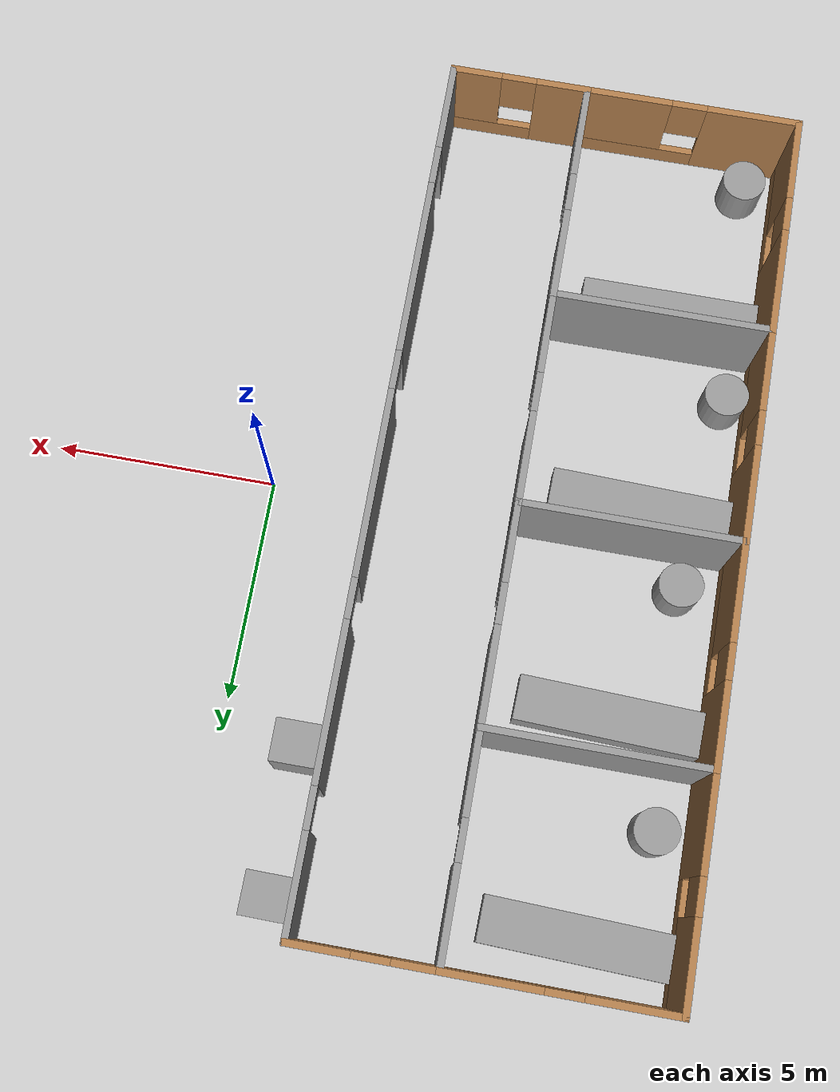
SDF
<sdf version="1.7">
 <world name="default">
  <model name="ground_plane">
   <static>1</static>
   <link name="link">
    <collision name="collision">
     <geometry><plane><normal>0 0 1</normal><size>100 100</size></plane></geometry>
     <surface><friction><ode><mu>100</mu><mu2>50</mu2></ode></friction></surface>
    </collision>
    <visual name="visual">
     <cast_shadows>0</cast_shadows>
     <geometry><plane><normal>0 0 1</normal><size>100 100</size></plane></geometry>
     <material>
      <script><uri>file://media/materials/scripts/gazebo.material</uri><name>Gazebo/Grey</name></script>
     </material>
    </visual>
   </link>
  </model>
  <model name="bed_1">
   <link name="link">
    <inertial>
     <mass>1</mass>
     <inertia>
      <ixx>0.166667</ixx>
      <ixy>0</ixy>
      <ixz>0</ixz>
      <iyy>0.166667</iyy>
      <iyz>0</iyz>
      <izz>0.166667</izz>
     </inertia>
    </inertial>
    <visual name="visual">
     <geometry><box><size>4.06412 1 0.738497</size></box></geometry>
     <material>
      <script><name>Gazebo/Grey</name><uri>file://media/materials/scripts/gazebo.material</uri></script>
      <shader type="pixel"/>
     </material>
    </visual>
    <collision name="collision">
     <geometry><box><size>4.06412 1 0.738497</size></box></geometry>
     <surface>
      <friction>
       <ode><mu>1</mu><mu2>1</mu2><fdir1>0 0 0</fdir1><slip1>0</slip1><slip2>0</slip2></ode>
       <torsional>
        <coefficient>1</coefficient>
        <patch_radius>0</patch_radius>
        <surface_radius>0</surface_radius>
        <use_patch_radius>1</use_patch_radius>
        <ode><slip>0</slip></ode>
       </torsional>
      </friction>
      <bounce><restitution_coefficient>0</restitution_coefficient><threshold>1e+06</threshold></bounce>
      <contact>
       <collide_without_contact>0</collide_without_contact>
       <collide_without_contact_bitmask>1</collide_without_contact_bitmask>
       <collide_bitmask>1</collide_bitmask>
       <ode>
        <soft_cfm>0</soft_cfm>
        <soft_erp>0.2</soft_erp>
        <kp>1e+13</kp>
        <kd>1</kd>
        <max_vel>0.01</max_vel>
        <min_depth>0</min_depth>
       </ode>
       <bullet>
        <split_impulse>1</split_impulse>
        <split_impulse_penetration_threshold>-0.01</split_impulse_penetration_threshold>
        <soft_cfm>0</soft_cfm>
        <soft_erp>0.2</soft_erp>
        <kp>1e+13</kp>
        <kd>1</kd>
       </bullet>
      </contact>
     </surface>
    </collision>
   </link>
   <static>0</static>
   <pose>-8.25739 -5.54308 0.368295 0 0.000469 -4.7e-05</pose>
  </model>
  <model name="bed_2">
   <link name="link">
    <inertial>
     <mass>1</mass>
     <inertia>
      <ixx>0.166667</ixx>
      <ixy>0</ixy>
      <ixz>0</ixz>
      <iyy>0.166667</iyy>
      <iyz>0</iyz>
      <izz>0.166667</izz>
     </inertia>
    </inertial>
    <visual name="visual">
     <geometry><box><size>4.06412 1 0.738497</size></box></geometry>
     <material>
      <script><name>Gazebo/Grey</name><uri>file://media/materials/scripts/gazebo.material</uri></script>
      <shader type="pixel"/>
     </material>
    </visual>
    <collision name="collision">
     <geometry><box><size>4.06412 1 0.738497</size></box></geometry>
     <surface>
      <friction>
       <ode><mu>1</mu><mu2>1</mu2><fdir1>0 0 0</fdir1><slip1>0</slip1><slip2>0</slip2></ode>
       <torsional>
        <coefficient>1</coefficient>
        <patch_radius>0</patch_radius>
        <surface_radius>0</surface_radius>
        <use_patch_radius>1</use_patch_radius>
        <ode><slip>0</slip></ode>
       </torsional>
      </friction>
      <bounce><restitution_coefficient>0</restitution_coefficient><threshold>1e+06</threshold></bounce>
      <contact>
       <collide_without_contact>0</collide_without_contact>
       <collide_without_contact_bitmask>1</collide_without_contact_bitmask>
       <collide_bitmask>1</collide_bitmask>
       <ode>
        <soft_cfm>0</soft_cfm>
        <soft_erp>0.2</soft_erp>
        <kp>1e+13</kp>
        <kd>1</kd>
        <max_vel>0.01</max_vel>
        <min_depth>0</min_depth>
       </ode>
       <bullet>
        <split_impulse>1</split_impulse>
        <split_impulse_penetration_threshold>-0.01</split_impulse_penetration_threshold>
        <soft_cfm>0</soft_cfm>
        <soft_erp>0.2</soft_erp>
        <kp>1e+13</kp>
        <kd>1</kd>
       </bullet>
      </contact>
     </surface>
    </collision>
   </link>
   <static>0</static>
   <pose>-8.25417 -0.775659 0.369245 7e-06 -0 -0.025887</pose>
  </model>
  <model name="stool_2">
   <link name="link">
    <inertial>
     <mass>1</mass>
     <inertia><ixx>0.145833</ixx><ixy>0</ixy><ixz>0</ixz><iyy>0.145833</iyy><iyz>0</iyz><izz>0.125</izz></inertia>
    </inertial>
    <visual name="visual">
     <geometry><cylinder><radius>0.5</radius><length>1</length></cylinder></geometry>
     <material>
      <script><name>Gazebo/Grey</name><uri>file://media/materials/scripts/gazebo.material</uri></script>
      <shader type="pixel"/>
     </material>
    </visual>
    <collision name="collision">
     <geometry><cylinder><radius>0.5</radius><length>1</length></cylinder></geometry>
     <surface>
      <friction>
       <ode><mu>1</mu><mu2>1</mu2><fdir1>0 0 0</fdir1><slip1>0</slip1><slip2>0</slip2></ode>
       <torsional>
        <coefficient>1</coefficient>
        <patch_radius>0</patch_radius>
        <surface_radius>0</surface_radius>
        <use_patch_radius>1</use_patch_radius>
        <ode><slip>0</slip></ode>
       </torsional>
      </friction>
      <bounce><restitution_coefficient>0</restitution_coefficient><threshold>1e+06</threshold></bounce>
      <contact>
       <collide_without_contact>0</collide_without_contact>
       <collide_without_contact_bitmask>1</collide_without_contact_bitmask>
       <collide_bitmask>1</collide_bitmask>
       <ode>
        <soft_cfm>0</soft_cfm>
        <soft_erp>0.2</soft_erp>
        <kp>1e+13</kp>
        <kd>1</kd>
        <max_vel>0.01</max_vel>
        <min_depth>0</min_depth>
       </ode>
       <bullet>
        <split_impulse>1</split_impulse>
        <split_impulse_penetration_threshold>-0.01</split_impulse_penetration_threshold>
        <soft_cfm>0</soft_cfm>
        <soft_erp>0.2</soft_erp>
        <kp>1e+13</kp>
        <kd>1</kd>
       </bullet>
      </contact>
     </surface>
    </collision>
   </link>
   <static>0</static>
   <pose>-9.8 -3.63625 0.499998 2e-06 1e-06 -3e-06</pose>
  </model>
  <model name="bed_3">
   <link name="link">
    <inertial>
     <mass>1</mass>
     <inertia>
      <ixx>0.166667</ixx>
      <ixy>0</ixy>
      <ixz>0</ixz>
      <iyy>0.166667</iyy>
      <iyz>0</iyz>
      <izz>0.166667</izz>
     </inertia>
    </inertial>
    <visual name="visual">
     <geometry><box><size>4.06412 1 0.738497</size></box></geometry>
     <material>
      <script><name>Gazebo/Grey</name><uri>file://media/materials/scripts/gazebo.material</uri></script>
      <shader type="pixel"/>
     </material>
    </visual>
    <collision name="collision">
     <geometry><box><size>4.06412 1 0.738497</size></box></geometry>
     <surface>
      <friction>
       <ode><mu>1</mu><mu2>1</mu2><fdir1>0 0 0</fdir1><slip1>0</slip1><slip2>0</slip2></ode>
       <torsional>
        <coefficient>1</coefficient>
        <patch_radius>0</patch_radius>
        <surface_radius>0</surface_radius>
        <use_patch_radius>1</use_patch_radius>
        <ode><slip>0</slip></ode>
       </torsional>
      </friction>
      <bounce><restitution_coefficient>0</restitution_coefficient><threshold>1e+06</threshold></bounce>
      <contact>
       <collide_without_contact>0</collide_without_contact>
       <collide_without_contact_bitmask>1</collide_without_contact_bitmask>
       <collide_bitmask>1</collide_bitmask>
       <ode>
        <soft_cfm>0</soft_cfm>
        <soft_erp>0.2</soft_erp>
        <kp>1e+13</kp>
        <kd>1</kd>
        <max_vel>0.01</max_vel>
        <min_depth>0</min_depth>
       </ode>
       <bullet>
        <split_impulse>1</split_impulse>
        <split_impulse_penetration_threshold>-0.01</split_impulse_penetration_threshold>
        <soft_cfm>0</soft_cfm>
        <soft_erp>0.2</soft_erp>
        <kp>1e+13</kp>
        <kd>1</kd>
       </bullet>
      </contact>
     </surface>
    </collision>
   </link>
   <static>0</static>
   <pose>-8.25125 4.00061 0.369249 -1e-06 -0 -0.033432</pose>
  </model>
  <model name="bed_4">
   <link name="link">
    <inertial>
     <mass>1</mass>
     <inertia>
      <ixx>0.166667</ixx>
      <ixy>0</ixy>
      <ixz>0</ixz>
      <iyy>0.166667</iyy>
      <iyz>0</iyz>
      <izz>0.166667</izz>
     </inertia>
    </inertial>
    <visual name="visual">
     <geometry><box><size>4.06412 1 0.738497</size></box></geometry>
     <material>
      <script><name>Gazebo/Grey</name><uri>file://media/materials/scripts/gazebo.material</uri></script>
      <shader type="pixel"/>
     </material>
    </visual>
    <collision name="collision">
     <geometry><box><size>4.06412 1 0.738497</size></box></geometry>
     <surface>
      <friction>
       <ode><mu>1</mu><mu2>1</mu2><fdir1>0 0 0</fdir1><slip1>0</slip1><slip2>0</slip2></ode>
       <torsional>
        <coefficient>1</coefficient>
        <patch_radius>0</patch_radius>
        <surface_radius>0</surface_radius>
        <use_patch_radius>1</use_patch_radius>
        <ode><slip>0</slip></ode>
       </torsional>
      </friction>
      <bounce><restitution_coefficient>0</restitution_coefficient><threshold>1e+06</threshold></bounce>
      <contact>
       <collide_without_contact>0</collide_without_contact>
       <collide_without_contact_bitmask>1</collide_without_contact_bitmask>
       <collide_bitmask>1</collide_bitmask>
       <ode>
        <soft_cfm>0</soft_cfm>
        <soft_erp>0.2</soft_erp>
        <kp>1e+13</kp>
        <kd>1</kd>
        <max_vel>0.01</max_vel>
        <min_depth>0</min_depth>
       </ode>
       <bullet>
        <split_impulse>1</split_impulse>
        <split_impulse_penetration_threshold>-0.01</split_impulse_penetration_threshold>
        <soft_cfm>0</soft_cfm>
        <soft_erp>0.2</soft_erp>
        <kp>1e+13</kp>
        <kd>1</kd>
       </bullet>
      </contact>
     </surface>
    </collision>
   </link>
   <static>0</static>
   <pose>-8.24267 8.70874 0.369243 -5e-06 2e-06 -0.030146</pose>
  </model>
  <model name="stool_4">
   <link name="link">
    <inertial>
     <mass>1</mass>
     <inertia><ixx>0.145833</ixx><ixy>0</ixy><ixz>0</ixz><iyy>0.145833</iyy><iyz>0</iyz><izz>0.125</izz></inertia>
    </inertial>
    <visual name="visual">
     <geometry><cylinder><radius>0.5</radius><length>1</length></cylinder></geometry>
     <material>
      <script><name>Gazebo/Grey</name><uri>file://media/materials/scripts/gazebo.material</uri></script>
      <shader type="pixel"/>
     </material>
    </visual>
    <collision name="collision">
     <geometry><cylinder><radius>0.5</radius><length>1</length></cylinder></geometry>
     <surface>
      <friction>
       <ode><mu>1</mu><mu2>1</mu2><fdir1>0 0 0</fdir1><slip1>0</slip1><slip2>0</slip2></ode>
       <torsional>
        <coefficient>1</coefficient>
        <patch_radius>0</patch_radius>
        <surface_radius>0</surface_radius>
        <use_patch_radius>1</use_patch_radius>
        <ode><slip>0</slip></ode>
       </torsional>
      </friction>
      <bounce><restitution_coefficient>0</restitution_coefficient><threshold>1e+06</threshold></bounce>
      <contact>
       <collide_without_contact>0</collide_without_contact>
       <collide_without_contact_bitmask>1</collide_without_contact_bitmask>
       <collide_bitmask>1</collide_bitmask>
       <ode>
        <soft_cfm>0</soft_cfm>
        <soft_erp>0.2</soft_erp>
        <kp>1e+13</kp>
        <kd>1</kd>
        <max_vel>0.01</max_vel>
        <min_depth>0</min_depth>
       </ode>
       <bullet>
        <split_impulse>1</split_impulse>
        <split_impulse_penetration_threshold>-0.01</split_impulse_penetration_threshold>
        <soft_cfm>0</soft_cfm>
        <soft_erp>0.2</soft_erp>
        <kp>1e+13</kp>
        <kd>1</kd>
       </bullet>
      </contact>
     </surface>
    </collision>
   </link>
   <static>0</static>
   <pose>-9.56304 6.25965 0.499998 2e-06 -0 0</pose>
  </model>
  <model name="hospital_floor_v2">
   <link name="Wall_24">
    <pose>-10.375 2.5506 0 0 -0 -1.5708</pose>
    <visual name="Wall_24_Visual_0">
     <pose>-1.53431 0 1.25 0 -0 0</pose>
     <geometry><box><size>1.93138 0.15 2.5</size></box></geometry>
     <material>
      <script><uri>file://media/materials/scripts/gazebo.material</uri><name>Gazebo/Wood</name></script>
      <ambient>1 1 1 1</ambient>
     </material>
     <meta><layer>0</layer></meta>
    </visual>
    <collision name="Wall_24_Collision_0">
     <geometry><box><size>1.93138 0.15 2.5</size></box></geometry>
     <pose>-1.53431 0 1.25 0 -0 0</pose>
    </collision>
    <visual name="Wall_24_Visual_1">
     <pose>0.965692 0 0.25 0 -0 0</pose>
     <geometry><box><size>3.06862 0.15 0.5</size></box></geometry>
     <material>
      <script><uri>file://media/materials/scripts/gazebo.material</uri><name>Gazebo/Wood</name></script>
      <ambient>1 1 1 1</ambient>
     </material>
     <meta><layer>0</layer></meta>
    </visual>
    <collision name="Wall_24_Collision_1">
     <geometry><box><size>3.06862 0.15 0.5</size></box></geometry>
     <pose>0.965692 0 0.25 0 -0 0</pose>
    </collision>
    <visual name="Wall_24_Visual_2">
     <pose>1.36569 0 1.5 0 -0 0</pose>
     <geometry><box><size>2.26862 0.15 2</size></box></geometry>
     <material>
      <script><uri>file://media/materials/scripts/gazebo.material</uri><name>Gazebo/Wood</name></script>
      <ambient>1 1 1 1</ambient>
     </material>
     <meta><layer>0</layer></meta>
    </visual>
    <collision name="Wall_24_Collision_2">
     <geometry><box><size>2.26862 0.15 2</size></box></geometry>
     <pose>1.36569 0 1.5 0 -0 0</pose>
    </collision>
    <visual name="Wall_24_Visual_3">
     <pose>-0.168617 0 1.9 0 -0 0</pose>
     <geometry><box><size>0.8 0.15 1.2</size></box></geometry>
     <material>
      <script><uri>file://media/materials/scripts/gazebo.material</uri><name>Gazebo/Wood</name></script>
      <ambient>1 1 1 1</ambient>
     </material>
     <meta><layer>0</layer></meta>
    </visual>
    <collision name="Wall_24_Collision_3">
     <geometry><box><size>0.8 0.15 1.2</size></box></geometry>
     <pose>-0.168617 0 1.9 0 -0 0</pose>
    </collision>
   </link>
   <link name="Wall_28">
    <collision name="Wall_28_Collision">
     <geometry><box><size>5 0.15 2.5</size></box></geometry>
     <pose>0 0 1.25 0 -0 0</pose>
    </collision>
    <visual name="Wall_28_Visual">
     <pose>0 0 1.25 0 -0 0</pose>
     <geometry><box><size>5 0.15 2.5</size></box></geometry>
     <material>
      <script><uri>file://media/materials/scripts/gazebo.material</uri><name>Gazebo/Grey</name></script>
      <ambient>1 1 1 1</ambient>
     </material>
     <meta><layer>0</layer></meta>
    </visual>
    <pose>-7.95 4.9756 0 0 -0 0</pose>
   </link>
   <link name="Wall_29">
    <pose>-5.525 2.5506 0 0 -0 -1.5708</pose>
    <visual name="Wall_29_Visual_0">
     <pose>-1.3768 0 1.25 0 -0 0</pose>
     <geometry><box><size>2.24639 0.15 2.5</size></box></geometry>
     <material>
      <script><uri>file://media/materials/scripts/gazebo.material</uri><name>Gazebo/Grey</name></script>
      <ambient>1 1 1 1</ambient>
     </material>
     <meta><layer>0</layer></meta>
    </visual>
    <collision name="Wall_29_Collision_0">
     <geometry><box><size>2.24639 0.15 2.5</size></box></geometry>
     <pose>-1.3768 0 1.25 0 -0 0</pose>
    </collision>
    <visual name="Wall_29_Visual_1">
     <pose>1.5732 0 1.25 0 -0 0</pose>
     <geometry><box><size>1.85361 0.15 2.5</size></box></geometry>
     <material>
      <script><uri>file://media/materials/scripts/gazebo.material</uri><name>Gazebo/Grey</name></script>
      <ambient>1 1 1 1</ambient>
     </material>
     <meta><layer>0</layer></meta>
    </visual>
    <collision name="Wall_29_Collision_1">
     <geometry><box><size>1.85361 0.15 2.5</size></box></geometry>
     <pose>1.5732 0 1.25 0 -0 0</pose>
    </collision>
    <visual name="Wall_29_Visual_2">
     <pose>0.196393 0 2.25 0 -0 0</pose>
     <geometry><box><size>0.9 0.15 0.5</size></box></geometry>
     <material>
      <script><uri>file://media/materials/scripts/gazebo.material</uri><name>Gazebo/Grey</name></script>
      <ambient>1 1 1 1</ambient>
     </material>
     <meta><layer>0</layer></meta>
    </visual>
    <collision name="Wall_29_Collision_2">
     <geometry><box><size>0.9 0.15 0.5</size></box></geometry>
     <pose>0.196393 0 2.25 0 -0 0</pose>
    </collision>
   </link>
   <link name="Wall_30">
    <collision name="Wall_30_Collision">
     <geometry><box><size>5 0.15 2.5</size></box></geometry>
     <pose>0 0 1.25 0 -0 0</pose>
    </collision>
    <visual name="Wall_30_Visual">
     <pose>0 0 1.25 0 -0 0</pose>
     <geometry><box><size>5 0.15 2.5</size></box></geometry>
     <material>
      <script><uri>file://media/materials/scripts/gazebo.material</uri><name>Gazebo/Grey</name></script>
      <ambient>1 1 1 1</ambient>
     </material>
     <meta><layer>0</layer></meta>
    </visual>
    <pose>-7.95 0.125599 0 0 -0 3.14159</pose>
   </link>
   <link name="Wall_31">
    <pose>-10.375 -2.2994 0 0 -0 -1.5708</pose>
    <visual name="Wall_31_Visual_0">
     <pose>-1.38396 0 1.25 0 -0 0</pose>
     <geometry><box><size>2.23208 0.15 2.5</size></box></geometry>
     <material>
      <script><uri>file://media/materials/scripts/gazebo.material</uri><name>Gazebo/Wood</name></script>
      <ambient>1 1 1 1</ambient>
     </material>
     <meta><layer>0</layer></meta>
    </visual>
    <collision name="Wall_31_Collision_0">
     <geometry><box><size>2.23208 0.15 2.5</size></box></geometry>
     <pose>-1.38396 0 1.25 0 -0 0</pose>
    </collision>
    <visual name="Wall_31_Visual_1">
     <pose>1.11604 0 0.25 0 -0 0</pose>
     <geometry><box><size>2.76792 0.15 0.5</size></box></geometry>
     <material>
      <script><uri>file://media/materials/scripts/gazebo.material</uri><name>Gazebo/Wood</name></script>
      <ambient>1 1 1 1</ambient>
     </material>
     <meta><layer>0</layer></meta>
    </visual>
    <collision name="Wall_31_Collision_1">
     <geometry><box><size>2.76792 0.15 0.5</size></box></geometry>
     <pose>1.11604 0 0.25 0 -0 0</pose>
    </collision>
    <visual name="Wall_31_Visual_2">
     <pose>1.51604 0 1.5 0 -0 0</pose>
     <geometry><box><size>1.96792 0.15 2</size></box></geometry>
     <material>
      <script><uri>file://media/materials/scripts/gazebo.material</uri><name>Gazebo/Wood</name></script>
      <ambient>1 1 1 1</ambient>
     </material>
     <meta><layer>0</layer></meta>
    </visual>
    <collision name="Wall_31_Collision_2">
     <geometry><box><size>1.96792 0.15 2</size></box></geometry>
     <pose>1.51604 0 1.5 0 -0 0</pose>
    </collision>
    <visual name="Wall_31_Visual_3">
     <pose>0.13208 0 1.9 0 -0 0</pose>
     <geometry><box><size>0.8 0.15 1.2</size></box></geometry>
     <material>
      <script><uri>file://media/materials/scripts/gazebo.material</uri><name>Gazebo/Wood</name></script>
      <ambient>1 1 1 1</ambient>
     </material>
     <meta><layer>0</layer></meta>
    </visual>
    <collision name="Wall_31_Collision_3">
     <geometry><box><size>0.8 0.15 1.2</size></box></geometry>
     <pose>0.13208 0 1.9 0 -0 0</pose>
    </collision>
   </link>
   <link name="Wall_32">
    <collision name="Wall_32_Collision">
     <geometry><box><size>5 0.15 2.5</size></box></geometry>
     <pose>0 0 1.25 0 -0 0</pose>
    </collision>
    <visual name="Wall_32_Visual">
     <pose>0 0 1.25 0 -0 0</pose>
     <geometry><box><size>5 0.15 2.5</size></box></geometry>
     <material>
      <script><uri>file://media/materials/scripts/gazebo.material</uri><name>Gazebo/Grey</name></script>
      <ambient>1 1 1 1</ambient>
     </material>
     <meta><layer>0</layer></meta>
    </visual>
    <pose>-7.95 -4.7244 0 0 -0 0</pose>
   </link>
   <link name="Wall_33">
    <pose>-5.525 -2.2994 0 0 -0 1.5708</pose>
    <visual name="Wall_33_Visual_0">
     <pose>-1.52076 0 1.25 0 -0 0</pose>
     <geometry><box><size>1.95848 0.15 2.5</size></box></geometry>
     <material>
      <script><uri>file://media/materials/scripts/gazebo.material</uri><name>Gazebo/Grey</name></script>
      <ambient>1 1 1 1</ambient>
     </material>
     <meta><layer>0</layer></meta>
    </visual>
    <collision name="Wall_33_Collision_0">
     <geometry><box><size>1.95848 0.15 2.5</size></box></geometry>
     <pose>-1.52076 0 1.25 0 -0 0</pose>
    </collision>
    <visual name="Wall_33_Visual_1">
     <pose>1.42924 0 1.25 0 -0 0</pose>
     <geometry><box><size>2.14152 0.15 2.5</size></box></geometry>
     <material>
      <script><uri>file://media/materials/scripts/gazebo.material</uri><name>Gazebo/Grey</name></script>
      <ambient>1 1 1 1</ambient>
     </material>
     <meta><layer>0</layer></meta>
    </visual>
    <collision name="Wall_33_Collision_1">
     <geometry><box><size>2.14152 0.15 2.5</size></box></geometry>
     <pose>1.42924 0 1.25 0 -0 0</pose>
    </collision>
    <visual name="Wall_33_Visual_2">
     <pose>-0.091523 0 2.25 0 -0 0</pose>
     <geometry><box><size>0.9 0.15 0.5</size></box></geometry>
     <material>
      <script><uri>file://media/materials/scripts/gazebo.material</uri><name>Gazebo/Grey</name></script>
      <ambient>1 1 1 1</ambient>
     </material>
     <meta><layer>0</layer></meta>
    </visual>
    <collision name="Wall_33_Collision_2">
     <geometry><box><size>0.9 0.15 0.5</size></box></geometry>
     <pose>-0.091523 0 2.25 0 -0 0</pose>
    </collision>
   </link>
   <link name="Wall_35">
    <pose>-10.375 -7.2744 0 0 -0 -1.5708</pose>
    <visual name="Wall_35_Visual_0">
     <pose>-1.37889 0 1.25 0 -0 0</pose>
     <geometry><box><size>2.49222 0.15 2.5</size></box></geometry>
     <material>
      <script><uri>file://media/materials/scripts/gazebo.material</uri><name>Gazebo/Wood</name></script>
      <ambient>1 1 1 1</ambient>
     </material>
     <meta><layer>0</layer></meta>
    </visual>
    <collision name="Wall_35_Collision_0">
     <geometry><box><size>2.49222 0.15 2.5</size></box></geometry>
     <pose>-1.37889 0 1.25 0 -0 0</pose>
    </collision>
    <visual name="Wall_35_Visual_1">
     <pose>1.24611 0 0.25 0 -0 0</pose>
     <geometry><box><size>2.75778 0.15 0.5</size></box></geometry>
     <material>
      <script><uri>file://media/materials/scripts/gazebo.material</uri><name>Gazebo/Wood</name></script>
      <ambient>1 1 1 1</ambient>
     </material>
     <meta><layer>0</layer></meta>
    </visual>
    <collision name="Wall_35_Collision_1">
     <geometry><box><size>2.75778 0.15 0.5</size></box></geometry>
     <pose>1.24611 0 0.25 0 -0 0</pose>
    </collision>
    <visual name="Wall_35_Visual_2">
     <pose>1.64611 0 1.5 0 -0 0</pose>
     <geometry><box><size>1.95778 0.15 2</size></box></geometry>
     <material>
      <script><uri>file://media/materials/scripts/gazebo.material</uri><name>Gazebo/Wood</name></script>
      <ambient>1 1 1 1</ambient>
     </material>
     <meta><layer>0</layer></meta>
    </visual>
    <collision name="Wall_35_Collision_2">
     <geometry><box><size>1.95778 0.15 2</size></box></geometry>
     <pose>1.64611 0 1.5 0 -0 0</pose>
    </collision>
    <visual name="Wall_35_Visual_3">
     <pose>0.26722 0 1.9 0 -0 0</pose>
     <geometry><box><size>0.8 0.15 1.2</size></box></geometry>
     <material>
      <script><uri>file://media/materials/scripts/gazebo.material</uri><name>Gazebo/Wood</name></script>
      <ambient>1 1 1 1</ambient>
     </material>
     <meta><layer>0</layer></meta>
    </visual>
    <collision name="Wall_35_Collision_3">
     <geometry><box><size>0.8 0.15 1.2</size></box></geometry>
     <pose>0.26722 0 1.9 0 -0 0</pose>
    </collision>
   </link>
   <link name="Wall_36">
    <pose>-7.95 -9.8244 0 0 -0 0</pose>
    <visual name="Wall_36_Visual_0">
     <pose>-1.41383 0 1.25 0 -0 0</pose>
     <geometry><box><size>2.17234 0.15 2.5</size></box></geometry>
     <material>
      <script><uri>file://media/materials/scripts/gazebo.material</uri><name>Gazebo/Wood</name></script>
      <ambient>1 1 1 1</ambient>
     </material>
     <meta><layer>0</layer></meta>
    </visual>
    <collision name="Wall_36_Collision_0">
     <geometry><box><size>2.17234 0.15 2.5</size></box></geometry>
     <pose>-1.41383 0 1.25 0 -0 0</pose>
    </collision>
    <visual name="Wall_36_Visual_1">
     <pose>1.08617 0 0.25 0 -0 0</pose>
     <geometry><box><size>2.82766 0.15 0.5</size></box></geometry>
     <material>
      <script><uri>file://media/materials/scripts/gazebo.material</uri><name>Gazebo/Wood</name></script>
      <ambient>1 1 1 1</ambient>
     </material>
     <meta><layer>0</layer></meta>
    </visual>
    <collision name="Wall_36_Collision_1">
     <geometry><box><size>2.82766 0.15 0.5</size></box></geometry>
     <pose>1.08617 0 0.25 0 -0 0</pose>
    </collision>
    <visual name="Wall_36_Visual_2">
     <pose>1.48617 0 1.5 0 -0 0</pose>
     <geometry><box><size>2.02766 0.15 2</size></box></geometry>
     <material>
      <script><uri>file://media/materials/scripts/gazebo.material</uri><name>Gazebo/Wood</name></script>
      <ambient>1 1 1 1</ambient>
     </material>
     <meta><layer>0</layer></meta>
    </visual>
    <collision name="Wall_36_Collision_2">
     <geometry><box><size>2.02766 0.15 2</size></box></geometry>
     <pose>1.48617 0 1.5 0 -0 0</pose>
    </collision>
    <visual name="Wall_36_Visual_3">
     <pose>0.072339 0 1.9 0 -0 0</pose>
     <geometry><box><size>0.8 0.15 1.2</size></box></geometry>
     <material>
      <script><uri>file://media/materials/scripts/gazebo.material</uri><name>Gazebo/Wood</name></script>
      <ambient>1 1 1 1</ambient>
     </material>
     <meta><layer>0</layer></meta>
    </visual>
    <collision name="Wall_36_Collision_3">
     <geometry><box><size>0.8 0.15 1.2</size></box></geometry>
     <pose>0.072339 0 1.9 0 -0 0</pose>
    </collision>
   </link>
   <link name="Wall_37">
    <pose>-5.525 -7.2744 0 0 -0 1.5708</pose>
    <visual name="Wall_37_Visual_0">
     <pose>-1.50888 0 1.25 0 -0 0</pose>
     <geometry><box><size>2.23223 0.15 2.5</size></box></geometry>
     <material>
      <script><uri>file://media/materials/scripts/gazebo.material</uri><name>Gazebo/Grey</name></script>
      <ambient>1 1 1 1</ambient>
     </material>
     <meta><layer>0</layer></meta>
    </visual>
    <collision name="Wall_37_Collision_0">
     <geometry><box><size>2.23223 0.15 2.5</size></box></geometry>
     <pose>-1.50888 0 1.25 0 -0 0</pose>
    </collision>
    <visual name="Wall_37_Visual_1">
     <pose>1.56612 0 1.25 0 -0 0</pose>
     <geometry><box><size>2.11777 0.15 2.5</size></box></geometry>
     <material>
      <script><uri>file://media/materials/scripts/gazebo.material</uri><name>Gazebo/Grey</name></script>
      <ambient>1 1 1 1</ambient>
     </material>
     <meta><layer>0</layer></meta>
    </visual>
    <collision name="Wall_37_Collision_1">
     <geometry><box><size>2.11777 0.15 2.5</size></box></geometry>
     <pose>1.56612 0 1.25 0 -0 0</pose>
    </collision>
    <visual name="Wall_37_Visual_2">
     <pose>0.057233 0 2.25 0 -0 0</pose>
     <geometry><box><size>0.9 0.15 0.5</size></box></geometry>
     <material>
      <script><uri>file://media/materials/scripts/gazebo.material</uri><name>Gazebo/Grey</name></script>
      <ambient>1 1 1 1</ambient>
     </material>
     <meta><layer>0</layer></meta>
    </visual>
    <collision name="Wall_37_Collision_2">
     <geometry><box><size>0.9 0.15 0.5</size></box></geometry>
     <pose>0.057233 0 2.25 0 -0 0</pose>
    </collision>
   </link>
   <link name="Wall_39">
    <pose>-10.375 7.4006 0 0 -0 1.5708</pose>
    <visual name="Wall_39_Visual_0">
     <pose>-1.39785 0 1.25 0 -0 0</pose>
     <geometry><box><size>2.2043 0.15 2.5</size></box></geometry>
     <material>
      <script><uri>file://media/materials/scripts/gazebo.material</uri><name>Gazebo/Wood</name></script>
      <ambient>1 1 1 1</ambient>
     </material>
     <meta><layer>0</layer></meta>
    </visual>
    <collision name="Wall_39_Collision_0">
     <geometry><box><size>2.2043 0.15 2.5</size></box></geometry>
     <pose>-1.39785 0 1.25 0 -0 0</pose>
    </collision>
    <visual name="Wall_39_Visual_1">
     <pose>1.10215 0 0.25 0 -0 0</pose>
     <geometry><box><size>2.7957 0.15 0.5</size></box></geometry>
     <material>
      <script><uri>file://media/materials/scripts/gazebo.material</uri><name>Gazebo/Wood</name></script>
      <ambient>1 1 1 1</ambient>
     </material>
     <meta><layer>0</layer></meta>
    </visual>
    <collision name="Wall_39_Collision_1">
     <geometry><box><size>2.7957 0.15 0.5</size></box></geometry>
     <pose>1.10215 0 0.25 0 -0 0</pose>
    </collision>
    <visual name="Wall_39_Visual_2">
     <pose>1.50215 0 1.5 0 -0 0</pose>
     <geometry><box><size>1.9957 0.15 2</size></box></geometry>
     <material>
      <script><uri>file://media/materials/scripts/gazebo.material</uri><name>Gazebo/Wood</name></script>
      <ambient>1 1 1 1</ambient>
     </material>
     <meta><layer>0</layer></meta>
    </visual>
    <collision name="Wall_39_Collision_2">
     <geometry><box><size>1.9957 0.15 2</size></box></geometry>
     <pose>1.50215 0 1.5 0 -0 0</pose>
    </collision>
    <visual name="Wall_39_Visual_3">
     <pose>0.104303 0 1.9 0 -0 0</pose>
     <geometry><box><size>0.8 0.15 1.2</size></box></geometry>
     <material>
      <script><uri>file://media/materials/scripts/gazebo.material</uri><name>Gazebo/Wood</name></script>
      <ambient>1 1 1 1</ambient>
     </material>
     <meta><layer>0</layer></meta>
    </visual>
    <collision name="Wall_39_Collision_3">
     <geometry><box><size>0.8 0.15 1.2</size></box></geometry>
     <pose>0.104303 0 1.9 0 -0 0</pose>
    </collision>
   </link>
   <link name="Wall_40">
    <pose>-7.95 9.8256 0 0 -0 0</pose>
    <visual name="Wall_40_Visual_0">
     <pose>-1.47467 0 1.25 0 -0 0</pose>
     <geometry><box><size>2.05067 0.15 2.5</size></box></geometry>
     <material>
      <script><uri>file://media/materials/scripts/gazebo.material</uri><name>Gazebo/Wood</name></script>
      <ambient>1 1 1 1</ambient>
     </material>
     <meta><layer>0</layer></meta>
    </visual>
    <collision name="Wall_40_Collision_0">
     <geometry><box><size>2.05067 0.15 2.5</size></box></geometry>
     <pose>-1.47467 0 1.25 0 -0 0</pose>
    </collision>
    <visual name="Wall_40_Visual_1">
     <pose>1.02533 0 0.25 0 -0 0</pose>
     <geometry><box><size>2.94933 0.15 0.5</size></box></geometry>
     <material>
      <script><uri>file://media/materials/scripts/gazebo.material</uri><name>Gazebo/Wood</name></script>
      <ambient>1 1 1 1</ambient>
     </material>
     <meta><layer>0</layer></meta>
    </visual>
    <collision name="Wall_40_Collision_1">
     <geometry><box><size>2.94933 0.15 0.5</size></box></geometry>
     <pose>1.02533 0 0.25 0 -0 0</pose>
    </collision>
    <visual name="Wall_40_Visual_2">
     <pose>1.42533 0 1.5 0 -0 0</pose>
     <geometry><box><size>2.14933 0.15 2</size></box></geometry>
     <material>
      <script><uri>file://media/materials/scripts/gazebo.material</uri><name>Gazebo/Wood</name></script>
      <ambient>1 1 1 1</ambient>
     </material>
     <meta><layer>0</layer></meta>
    </visual>
    <collision name="Wall_40_Collision_2">
     <geometry><box><size>2.14933 0.15 2</size></box></geometry>
     <pose>1.42533 0 1.5 0 -0 0</pose>
    </collision>
    <visual name="Wall_40_Visual_3">
     <pose>-0.049332 0 1.9 0 -0 0</pose>
     <geometry><box><size>0.8 0.15 1.2</size></box></geometry>
     <material>
      <script><uri>file://media/materials/scripts/gazebo.material</uri><name>Gazebo/Wood</name></script>
      <ambient>1 1 1 1</ambient>
     </material>
     <meta><layer>0</layer></meta>
    </visual>
    <collision name="Wall_40_Collision_3">
     <geometry><box><size>0.8 0.15 1.2</size></box></geometry>
     <pose>-0.049332 0 1.9 0 -0 0</pose>
    </collision>
   </link>
   <link name="Wall_41">
    <pose>-5.525 7.4006 0 0 -0 -1.5708</pose>
    <visual name="Wall_41_Visual_0">
     <pose>-1.40548 0 1.25 0 -0 0</pose>
     <geometry><box><size>2.18904 0.15 2.5</size></box></geometry>
     <material>
      <script><uri>file://media/materials/scripts/gazebo.material</uri><name>Gazebo/Grey</name></script>
      <ambient>1 1 1 1</ambient>
     </material>
     <meta><layer>0</layer></meta>
    </visual>
    <collision name="Wall_41_Collision_0">
     <geometry><box><size>2.18904 0.15 2.5</size></box></geometry>
     <pose>-1.40548 0 1.25 0 -0 0</pose>
    </collision>
    <visual name="Wall_41_Visual_1">
     <pose>1.54452 0 1.25 0 -0 0</pose>
     <geometry><box><size>1.91096 0.15 2.5</size></box></geometry>
     <material>
      <script><uri>file://media/materials/scripts/gazebo.material</uri><name>Gazebo/Grey</name></script>
      <ambient>1 1 1 1</ambient>
     </material>
     <meta><layer>0</layer></meta>
    </visual>
    <collision name="Wall_41_Collision_1">
     <geometry><box><size>1.91096 0.15 2.5</size></box></geometry>
     <pose>1.54452 0 1.25 0 -0 0</pose>
    </collision>
    <visual name="Wall_41_Visual_2">
     <pose>0.139037 0 2.25 0 -0 0</pose>
     <geometry><box><size>0.9 0.15 0.5</size></box></geometry>
     <material>
      <script><uri>file://media/materials/scripts/gazebo.material</uri><name>Gazebo/Grey</name></script>
      <ambient>1 1 1 1</ambient>
     </material>
     <meta><layer>0</layer></meta>
    </visual>
    <collision name="Wall_41_Collision_2">
     <geometry><box><size>0.9 0.15 0.5</size></box></geometry>
     <pose>0.139037 0 2.25 0 -0 0</pose>
    </collision>
   </link>
   <link name="Wall_43">
    <pose>-3.975 9.8256 0 0 -0 0</pose>
    <visual name="Wall_43_Visual_0">
     <pose>-1.09822 0 1.25 0 -0 0</pose>
     <geometry><box><size>1.05355 0.15 2.5</size></box></geometry>
     <material>
      <script><uri>file://media/materials/scripts/gazebo.material</uri><name>Gazebo/Wood</name></script>
      <ambient>1 1 1 1</ambient>
     </material>
     <meta><layer>0</layer></meta>
    </visual>
    <collision name="Wall_43_Collision_0">
     <geometry><box><size>1.05355 0.15 2.5</size></box></geometry>
     <pose>-1.09822 0 1.25 0 -0 0</pose>
    </collision>
    <visual name="Wall_43_Visual_1">
     <pose>0.526776 0 0.25 0 -0 0</pose>
     <geometry><box><size>2.19645 0.15 0.5</size></box></geometry>
     <material>
      <script><uri>file://media/materials/scripts/gazebo.material</uri><name>Gazebo/Wood</name></script>
      <ambient>1 1 1 1</ambient>
     </material>
     <meta><layer>0</layer></meta>
    </visual>
    <collision name="Wall_43_Collision_1">
     <geometry><box><size>2.19645 0.15 0.5</size></box></geometry>
     <pose>0.526776 0 0.25 0 -0 0</pose>
    </collision>
    <visual name="Wall_43_Visual_2">
     <pose>0.926776 0 1.5 0 -0 0</pose>
     <geometry><box><size>1.39645 0.15 2</size></box></geometry>
     <material>
      <script><uri>file://media/materials/scripts/gazebo.material</uri><name>Gazebo/Wood</name></script>
      <ambient>1 1 1 1</ambient>
     </material>
     <meta><layer>0</layer></meta>
    </visual>
    <collision name="Wall_43_Collision_2">
     <geometry><box><size>1.39645 0.15 2</size></box></geometry>
     <pose>0.926776 0 1.5 0 -0 0</pose>
    </collision>
    <visual name="Wall_43_Visual_3">
     <pose>-0.171448 0 1.9 0 -0 0</pose>
     <geometry><box><size>0.8 0.15 1.2</size></box></geometry>
     <material>
      <script><uri>file://media/materials/scripts/gazebo.material</uri><name>Gazebo/Wood</name></script>
      <ambient>1 1 1 1</ambient>
     </material>
     <meta><layer>0</layer></meta>
    </visual>
    <collision name="Wall_43_Collision_3">
     <geometry><box><size>0.8 0.15 1.2</size></box></geometry>
     <pose>-0.171448 0 1.9 0 -0 0</pose>
    </collision>
   </link>
   <link name="Wall_44">
    <pose>-2.425 0.025599 0 0 -0 -1.5708</pose>
    <visual name="Wall_44_Visual_0">
     <pose>-8.73992 0 1.25 0 -0 0</pose>
     <geometry><box><size>2.27015 0.15 2.5</size></box></geometry>
     <material>
      <script><uri>file://media/materials/scripts/gazebo.material</uri><name>Gazebo/Grey</name></script>
      <ambient>1 1 1 1</ambient>
     </material>
     <meta><layer>0</layer></meta>
    </visual>
    <collision name="Wall_44_Collision_0">
     <geometry><box><size>2.27015 0.15 2.5</size></box></geometry>
     <pose>-8.73992 0 1.25 0 -0 0</pose>
    </collision>
    <visual name="Wall_44_Visual_1">
     <pose>-4.96479 0 1.25 0 -0 0</pose>
     <geometry><box><size>3.48012 0.15 2.5</size></box></geometry>
     <material>
      <script><uri>file://media/materials/scripts/gazebo.material</uri><name>Gazebo/Grey</name></script>
      <ambient>1 1 1 1</ambient>
     </material>
     <meta><layer>0</layer></meta>
    </visual>
    <collision name="Wall_44_Collision_1">
     <geometry><box><size>3.48012 0.15 2.5</size></box></geometry>
     <pose>-4.96479 0 1.25 0 -0 0</pose>
    </collision>
    <visual name="Wall_44_Visual_2">
     <pose>-0.199382 0 1.25 0 -0 0</pose>
     <geometry><box><size>4.2507 0.15 2.5</size></box></geometry>
     <material>
      <script><uri>file://media/materials/scripts/gazebo.material</uri><name>Gazebo/Grey</name></script>
      <ambient>1 1 1 1</ambient>
     </material>
     <meta><layer>0</layer></meta>
    </visual>
    <collision name="Wall_44_Collision_2">
     <geometry><box><size>4.2507 0.15 2.5</size></box></geometry>
     <pose>-0.199382 0 1.25 0 -0 0</pose>
    </collision>
    <visual name="Wall_44_Visual_3">
     <pose>4.8702 0 1.25 0 -0 0</pose>
     <geometry><box><size>4.08847 0.15 2.5</size></box></geometry>
     <material>
      <script><uri>file://media/materials/scripts/gazebo.material</uri><name>Gazebo/Grey</name></script>
      <ambient>1 1 1 1</ambient>
     </material>
     <meta><layer>0</layer></meta>
    </visual>
    <collision name="Wall_44_Collision_3">
     <geometry><box><size>4.08847 0.15 2.5</size></box></geometry>
     <pose>4.8702 0 1.25 0 -0 0</pose>
    </collision>
    <visual name="Wall_44_Visual_4">
     <pose>8.84472 0 1.25 0 -0 0</pose>
     <geometry><box><size>2.06056 0.15 2.5</size></box></geometry>
     <material>
      <script><uri>file://media/materials/scripts/gazebo.material</uri><name>Gazebo/Grey</name></script>
      <ambient>1 1 1 1</ambient>
     </material>
     <meta><layer>0</layer></meta>
    </visual>
    <collision name="Wall_44_Collision_4">
     <geometry><box><size>2.06056 0.15 2.5</size></box></geometry>
     <pose>8.84472 0 1.25 0 -0 0</pose>
    </collision>
    <visual name="Wall_44_Visual_5">
     <pose>-7.15485 0 2.25 0 -0 0</pose>
     <geometry><box><size>0.9 0.15 0.5</size></box></geometry>
     <material>
      <script><uri>file://media/materials/scripts/gazebo.material</uri><name>Gazebo/Grey</name></script>
      <ambient>1 1 1 1</ambient>
     </material>
     <meta><layer>0</layer></meta>
    </visual>
    <collision name="Wall_44_Collision_5">
     <geometry><box><size>0.9 0.15 0.5</size></box></geometry>
     <pose>-7.15485 0 2.25 0 -0 0</pose>
    </collision>
    <visual name="Wall_44_Visual_6">
     <pose>-2.77473 0 2.25 0 -0 0</pose>
     <geometry><box><size>0.9 0.15 0.5</size></box></geometry>
     <material>
      <script><uri>file://media/materials/scripts/gazebo.material</uri><name>Gazebo/Grey</name></script>
      <ambient>1 1 1 1</ambient>
     </material>
     <meta><layer>0</layer></meta>
    </visual>
    <collision name="Wall_44_Collision_6">
     <geometry><box><size>0.9 0.15 0.5</size></box></geometry>
     <pose>-2.77473 0 2.25 0 -0 0</pose>
    </collision>
    <visual name="Wall_44_Visual_7">
     <pose>2.37597 0 2.25 0 -0 0</pose>
     <geometry><box><size>0.9 0.15 0.5</size></box></geometry>
     <material>
      <script><uri>file://media/materials/scripts/gazebo.material</uri><name>Gazebo/Grey</name></script>
      <ambient>1 1 1 1</ambient>
     </material>
     <meta><layer>0</layer></meta>
    </visual>
    <collision name="Wall_44_Collision_7">
     <geometry><box><size>0.9 0.15 0.5</size></box></geometry>
     <pose>2.37597 0 2.25 0 -0 0</pose>
    </collision>
    <visual name="Wall_44_Visual_8">
     <pose>7.36444 0 2.25 0 -0 0</pose>
     <geometry><box><size>0.9 0.15 0.5</size></box></geometry>
     <material>
      <script><uri>file://media/materials/scripts/gazebo.material</uri><name>Gazebo/Grey</name></script>
      <ambient>1 1 1 1</ambient>
     </material>
     <meta><layer>0</layer></meta>
    </visual>
    <collision name="Wall_44_Collision_8">
     <geometry><box><size>0.9 0.15 0.5</size></box></geometry>
     <pose>7.36444 0 2.25 0 -0 0</pose>
    </collision>
   </link>
   <link name="Wall_47">
    <pose>-3.975 -9.8244 0 0 -0 0</pose>
    <visual name="Wall_47_Visual_0">
     <pose>-0.996933 0 1.25 0 -0 0</pose>
     <geometry><box><size>1.25654 0.15 2.5</size></box></geometry>
     <material>
      <script><uri>file://media/materials/scripts/gazebo.material</uri><name>Gazebo/Wood</name></script>
      <ambient>1 1 1 1</ambient>
     </material>
     <meta><layer>0</layer></meta>
    </visual>
    <collision name="Wall_47_Collision_0">
     <geometry><box><size>1.25654 0.15 2.5</size></box></geometry>
     <pose>-0.996933 0 1.25 0 -0 0</pose>
    </collision>
    <visual name="Wall_47_Visual_1">
     <pose>0.628268 0 0.25 0 -0 0</pose>
     <geometry><box><size>1.99387 0.15 0.5</size></box></geometry>
     <material>
      <script><uri>file://media/materials/scripts/gazebo.material</uri><name>Gazebo/Wood</name></script>
      <ambient>1 1 1 1</ambient>
     </material>
     <meta><layer>0</layer></meta>
    </visual>
    <collision name="Wall_47_Collision_1">
     <geometry><box><size>1.99387 0.15 0.5</size></box></geometry>
     <pose>0.628268 0 0.25 0 -0 0</pose>
    </collision>
    <visual name="Wall_47_Visual_2">
     <pose>1.02827 0 1.5 0 -0 0</pose>
     <geometry><box><size>1.19387 0.15 2</size></box></geometry>
     <material>
      <script><uri>file://media/materials/scripts/gazebo.material</uri><name>Gazebo/Wood</name></script>
      <ambient>1 1 1 1</ambient>
     </material>
     <meta><layer>0</layer></meta>
    </visual>
    <collision name="Wall_47_Collision_2">
     <geometry><box><size>1.19387 0.15 2</size></box></geometry>
     <pose>1.02827 0 1.5 0 -0 0</pose>
    </collision>
    <visual name="Wall_47_Visual_3">
     <pose>0.031335 0 1.9 0 -0 0</pose>
     <geometry><box><size>0.8 0.15 1.2</size></box></geometry>
     <material>
      <script><uri>file://media/materials/scripts/gazebo.material</uri><name>Gazebo/Wood</name></script>
      <ambient>1 1 1 1</ambient>
     </material>
     <meta><layer>0</layer></meta>
    </visual>
    <collision name="Wall_47_Collision_3">
     <geometry><box><size>0.8 0.15 1.2</size></box></geometry>
     <pose>0.031335 0 1.9 0 -0 0</pose>
    </collision>
   </link>
   <static>1</static>
  </model>
  <model name="stool_4_0">
   <link name="link">
    <inertial>
     <mass>1</mass>
     <inertia><ixx>0.145833</ixx><ixy>0</ixy><ixz>0</ixz><iyy>0.145833</iyy><iyz>0</iyz><izz>0.125</izz></inertia>
    </inertial>
    <visual name="visual">
     <geometry><cylinder><radius>0.5</radius><length>1</length></cylinder></geometry>
     <material>
      <script><name>Gazebo/Grey</name><uri>file://media/materials/scripts/gazebo.material</uri></script>
      <shader type="pixel"/>
     </material>
    </visual>
    <collision name="collision">
     <geometry><cylinder><radius>0.5</radius><length>1</length></cylinder></geometry>
     <surface>
      <friction>
       <ode><mu>1</mu><mu2>1</mu2><fdir1>0 0 0</fdir1><slip1>0</slip1><slip2>0</slip2></ode>
       <torsional>
        <coefficient>1</coefficient>
        <patch_radius>0</patch_radius>
        <surface_radius>0</surface_radius>
        <use_patch_radius>1</use_patch_radius>
        <ode><slip>0</slip></ode>
       </torsional>
      </friction>
      <bounce><restitution_coefficient>0</restitution_coefficient><threshold>1e+06</threshold></bounce>
      <contact>
       <collide_without_contact>0</collide_without_contact>
       <collide_without_contact_bitmask>1</collide_without_contact_bitmask>
       <collide_bitmask>1</collide_bitmask>
       <ode>
        <soft_cfm>0</soft_cfm>
        <soft_erp>0.2</soft_erp>
        <kp>1e+13</kp>
        <kd>1</kd>
        <max_vel>0.01</max_vel>
        <min_depth>0</min_depth>
       </ode>
       <bullet>
        <split_impulse>1</split_impulse>
        <split_impulse_penetration_threshold>-0.01</split_impulse_penetration_threshold>
        <soft_cfm>0</soft_cfm>
        <soft_erp>0.2</soft_erp>
        <kp>1e+13</kp>
        <kd>1</kd>
       </bullet>
      </contact>
     </surface>
    </collision>
   </link>
   <static>0</static>
   <pose>-9.36419 0.924122 0.499998 -3e-06 -0 -2e-06</pose>
  </model>
  <model name="stool_2_clone">
   <link name="link">
    <inertial>
     <mass>1</mass>
     <inertia><ixx>0.145833</ixx><ixy>0</ixy><ixz>0</ixz><iyy>0.145833</iyy><iyz>0</iyz><izz>0.125</izz></inertia>
    </inertial>
    <visual name="visual">
     <geometry><cylinder><radius>0.5</radius><length>1</length></cylinder></geometry>
     <material>
      <script><name>Gazebo/Grey</name><uri>file://media/materials/scripts/gazebo.material</uri></script>
      <shader type="pixel"/>
     </material>
    </visual>
    <collision name="collision">
     <geometry><cylinder><radius>0.5</radius><length>1</length></cylinder></geometry>
     <surface>
      <friction>
       <ode><mu>1</mu><mu2>1</mu2><fdir1>0 0 0</fdir1><slip1>0</slip1><slip2>0</slip2></ode>
       <torsional>
        <coefficient>1</coefficient>
        <patch_radius>0</patch_radius>
        <surface_radius>0</surface_radius>
        <use_patch_radius>1</use_patch_radius>
        <ode><slip>0</slip></ode>
       </torsional>
      </friction>
      <bounce><restitution_coefficient>0</restitution_coefficient><threshold>1e+06</threshold></bounce>
      <contact>
       <collide_without_contact>0</collide_without_contact>
       <collide_without_contact_bitmask>1</collide_without_contact_bitmask>
       <collide_bitmask>1</collide_bitmask>
       <ode>
        <soft_cfm>0</soft_cfm>
        <soft_erp>0.2</soft_erp>
        <kp>1e+13</kp>
        <kd>1</kd>
        <max_vel>0.01</max_vel>
        <min_depth>0</min_depth>
       </ode>
       <bullet>
        <split_impulse>1</split_impulse>
        <split_impulse_penetration_threshold>-0.01</split_impulse_penetration_threshold>
        <soft_cfm>0</soft_cfm>
        <soft_erp>0.2</soft_erp>
        <kp>1e+13</kp>
        <kd>1</kd>
       </bullet>
      </contact>
     </surface>
    </collision>
   </link>
   <static>0</static>
   <pose>-9.53873 -9.01982 0.499992 3e-06 -0 -2e-06</pose>
  </model>
  <model name="unit_box_clone_1_clone">
   <pose>-1.80619 9.02081 0.807095 0 -0 -0.007925</pose>
   <link name="link">
    <inertial>
     <mass>1</mass>
     <inertia>
      <ixx>0.166667</ixx>
      <ixy>0</ixy>
      <ixz>0</ixz>
      <iyy>0.166667</iyy>
      <iyz>0</iyz>
      <izz>0.166667</izz>
     </inertia>
    </inertial>
    <collision name="collision"><geometry><box><size>1 0.926158 1.61419</size></box></geometry></collision>
    <visual name="visual">
     <geometry><box><size>1 0.926158 1.61419</size></box></geometry>
     <material>
      <script><name>Gazebo/Grey</name><uri>file://media/materials/scripts/gazebo.material</uri></script>
     </material>
    </visual>
   </link>
  </model>
  <model name="unit_box_clone_1_clone_clone_0">
   <pose>-1.79708 5.85953 0.807095 0 -0 0.002168</pose>
   <link name="link">
    <inertial>
     <mass>1</mass>
     <inertia>
      <ixx>0.166667</ixx>
      <ixy>0</ixy>
      <ixz>0</ixz>
      <iyy>0.166667</iyy>
      <iyz>0</iyz>
      <izz>0.166667</izz>
     </inertia>
    </inertial>
    <collision name="collision"><geometry><box><size>1 0.926158 1.61419</size></box></geometry></collision>
    <visual name="visual">
     <geometry><box><size>1 0.926158 1.61419</size></box></geometry>
     <material>
      <script><name>Gazebo/Grey</name><uri>file://media/materials/scripts/gazebo.material</uri></script>
     </material>
    </visual>
   </link>
  </model>
 </world>
</sdf>
